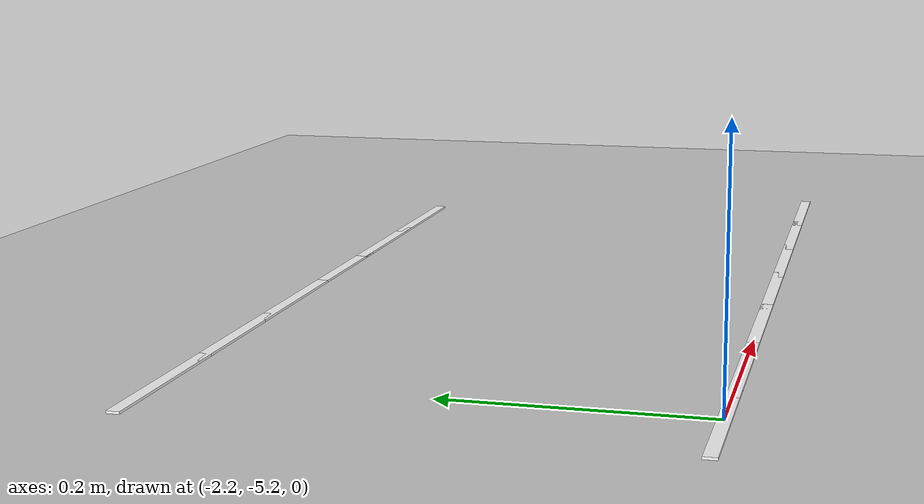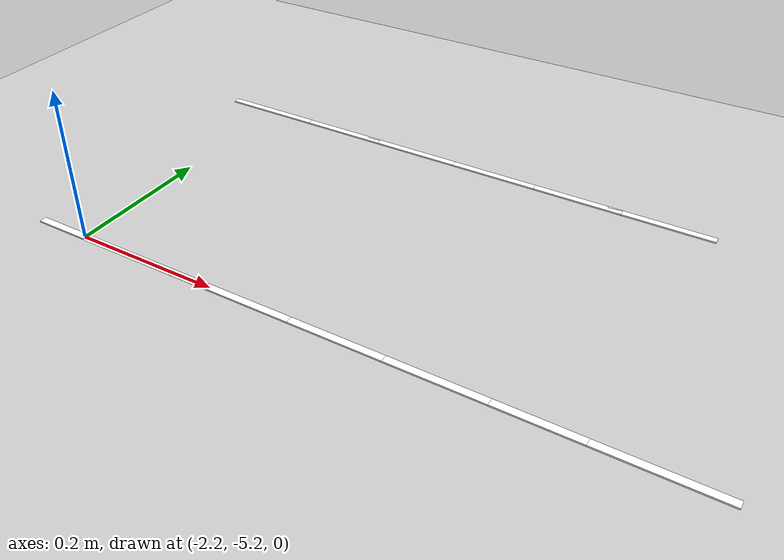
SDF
<sdf version="1.7">
 <world name="default">
  <model name="ground_plane">
   <static>1</static>
   <link name="link">
    <collision name="collision">
     <geometry><plane><normal>0 0 1</normal><size>100 100</size></plane></geometry>
     <surface>
      <contact><collide_bitmask>65535</collide_bitmask></contact>
      <friction><ode><mu>100</mu><mu2>50</mu2></ode></friction>
     </surface>
    </collision>
    <visual name="visual">
     <cast_shadows>0</cast_shadows>
     <geometry><plane><normal>0 0 1</normal><size>100 100</size></plane></geometry>
     <material>
      <script><uri>file://media/materials/scripts/gazebo.material</uri><name>Gazebo/Grey</name></script>
     </material>
    </visual>
   </link>
  </model>
  <model name="lane_line_left_6">
   <static>1</static>
   <link name="link">
    <pose>0 0 -0.004 0 -0 0</pose>
    <visual name="visual">
     <geometry><box><size>0.1424 0.01 0.01</size></box></geometry>
     <material><ambient>1 1 1 1</ambient><diffuse>1 1 1 1</diffuse></material>
    </visual>
    <collision name="collision"><geometry><box><size>0.1424 0.01 0.01</size></box></geometry></collision>
   </link>
   <pose>-2.20408 -4.8 0 0 -0 0</pose>
  </model>
  <model name="lane_line_right_6">
   <static>1</static>
   <link name="link">
    <pose>0 0 -0.004 0 -0 0</pose>
    <visual name="visual">
     <geometry><box><size>0.1424 0.01 0.01</size></box></geometry>
     <material><ambient>1 1 1 1</ambient><diffuse>1 1 1 1</diffuse></material>
    </visual>
    <collision name="collision"><geometry><box><size>0.1424 0.01 0.01</size></box></geometry></collision>
   </link>
   <pose>-2.20408 -5.2 0 0 -0 0</pose>
  </model>
  <model name="lane_line_left_7">
   <static>1</static>
   <link name="link">
    <pose>0 0 -0.004 0 -0 0</pose>
    <visual name="visual">
     <geometry><box><size>0.1424 0.01 0.01</size></box></geometry>
     <material><ambient>1 1 1 1</ambient><diffuse>1 1 1 1</diffuse></material>
    </visual>
    <collision name="collision"><geometry><box><size>0.1424 0.01 0.01</size></box></geometry></collision>
   </link>
   <pose>-2.08163 -4.8 0 0 -0 0</pose>
  </model>
  <model name="lane_line_right_7">
   <static>1</static>
   <link name="link">
    <pose>0 0 -0.004 0 -0 0</pose>
    <visual name="visual">
     <geometry><box><size>0.1424 0.01 0.01</size></box></geometry>
     <material><ambient>1 1 1 1</ambient><diffuse>1 1 1 1</diffuse></material>
    </visual>
    <collision name="collision"><geometry><box><size>0.1424 0.01 0.01</size></box></geometry></collision>
   </link>
   <pose>-2.08163 -5.2 0 0 -0 0</pose>
  </model>
  <model name="lane_line_left_8">
   <static>1</static>
   <link name="link">
    <pose>0 0 -0.004 0 -0 0</pose>
    <visual name="visual">
     <geometry><box><size>0.1424 0.01 0.01</size></box></geometry>
     <material><ambient>1 1 1 1</ambient><diffuse>1 1 1 1</diffuse></material>
    </visual>
    <collision name="collision"><geometry><box><size>0.1424 0.01 0.01</size></box></geometry></collision>
   </link>
   <pose>-1.95918 -4.8 0 0 -0 0</pose>
  </model>
  <model name="lane_line_right_8">
   <static>1</static>
   <link name="link">
    <pose>0 0 -0.004 0 -0 0</pose>
    <visual name="visual">
     <geometry><box><size>0.1424 0.01 0.01</size></box></geometry>
     <material><ambient>1 1 1 1</ambient><diffuse>1 1 1 1</diffuse></material>
    </visual>
    <collision name="collision"><geometry><box><size>0.1424 0.01 0.01</size></box></geometry></collision>
   </link>
   <pose>-1.95918 -5.2 0 0 -0 0</pose>
  </model>
  <model name="lane_line_left_9">
   <static>1</static>
   <link name="link">
    <pose>0 0 -0.004 0 -0 0</pose>
    <visual name="visual">
     <geometry><box><size>0.1424 0.01 0.01</size></box></geometry>
     <material><ambient>1 1 1 1</ambient><diffuse>1 1 1 1</diffuse></material>
    </visual>
    <collision name="collision"><geometry><box><size>0.1424 0.01 0.01</size></box></geometry></collision>
   </link>
   <pose>-1.83673 -4.8 0 0 -0 0</pose>
  </model>
  <model name="lane_line_right_9">
   <static>1</static>
   <link name="link">
    <pose>0 0 -0.004 0 -0 0</pose>
    <visual name="visual">
     <geometry><box><size>0.1424 0.01 0.01</size></box></geometry>
     <material><ambient>1 1 1 1</ambient><diffuse>1 1 1 1</diffuse></material>
    </visual>
    <collision name="collision"><geometry><box><size>0.1424 0.01 0.01</size></box></geometry></collision>
   </link>
   <pose>-1.83673 -5.2 0 0 -0 0</pose>
  </model>
  <model name="lane_line_left_10">
   <static>1</static>
   <link name="link">
    <pose>0 0 -0.004 0 -0 0</pose>
    <visual name="visual">
     <geometry><box><size>0.1424 0.01 0.01</size></box></geometry>
     <material><ambient>1 1 1 1</ambient><diffuse>1 1 1 1</diffuse></material>
    </visual>
    <collision name="collision"><geometry><box><size>0.1424 0.01 0.01</size></box></geometry></collision>
   </link>
   <pose>-1.71429 -4.8 0 0 -0 0</pose>
  </model>
  <model name="lane_line_right_10">
   <static>1</static>
   <link name="link">
    <pose>0 0 -0.004 0 -0 0</pose>
    <visual name="visual">
     <geometry><box><size>0.1424 0.01 0.01</size></box></geometry>
     <material><ambient>1 1 1 1</ambient><diffuse>1 1 1 1</diffuse></material>
    </visual>
    <collision name="collision"><geometry><box><size>0.1424 0.01 0.01</size></box></geometry></collision>
   </link>
   <pose>-1.71429 -5.2 0 0 -0 0</pose>
  </model>
  <model name="lane_line_left_11">
   <static>1</static>
   <link name="link">
    <pose>0 0 -0.004 0 -0 0</pose>
    <visual name="visual">
     <geometry><box><size>0.1424 0.01 0.01</size></box></geometry>
     <material><ambient>1 1 1 1</ambient><diffuse>1 1 1 1</diffuse></material>
    </visual>
    <collision name="collision"><geometry><box><size>0.1424 0.01 0.01</size></box></geometry></collision>
   </link>
   <pose>-1.59184 -4.8 0 0 -0 0</pose>
  </model>
  <model name="lane_line_right_11">
   <static>1</static>
   <link name="link">
    <pose>0 0 -0.004 0 -0 0</pose>
    <visual name="visual">
     <geometry><box><size>0.1424 0.01 0.01</size></box></geometry>
     <material><ambient>1 1 1 1</ambient><diffuse>1 1 1 1</diffuse></material>
    </visual>
    <collision name="collision"><geometry><box><size>0.1424 0.01 0.01</size></box></geometry></collision>
   </link>
   <pose>-1.59184 -5.2 0 0 -0 0</pose>
  </model>
  <model name="lane_line_right_12">
   <static>1</static>
   <link name="link">
    <pose>0 0 -0.004 0 -0 0</pose>
    <visual name="visual">
     <geometry><box><size>0.1424 0.01 0.01</size></box></geometry>
     <material><ambient>1 1 1 1</ambient><diffuse>1 1 1 1</diffuse></material>
    </visual>
    <collision name="collision"><geometry><box><size>0.1424 0.01 0.01</size></box></geometry></collision>
   </link>
   <pose>-1.46939 -5.2 0 0 -0 0</pose>
  </model>
 </world>
</sdf>
